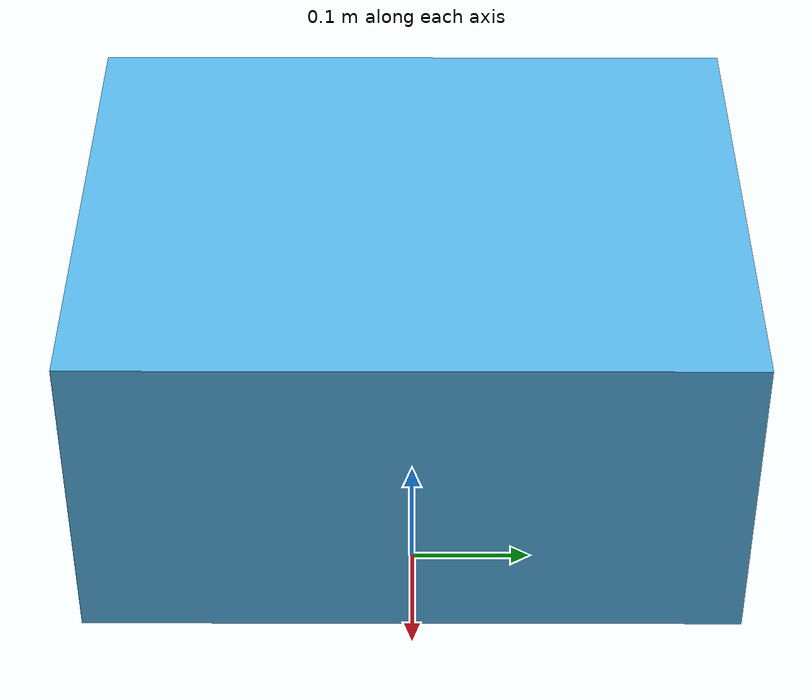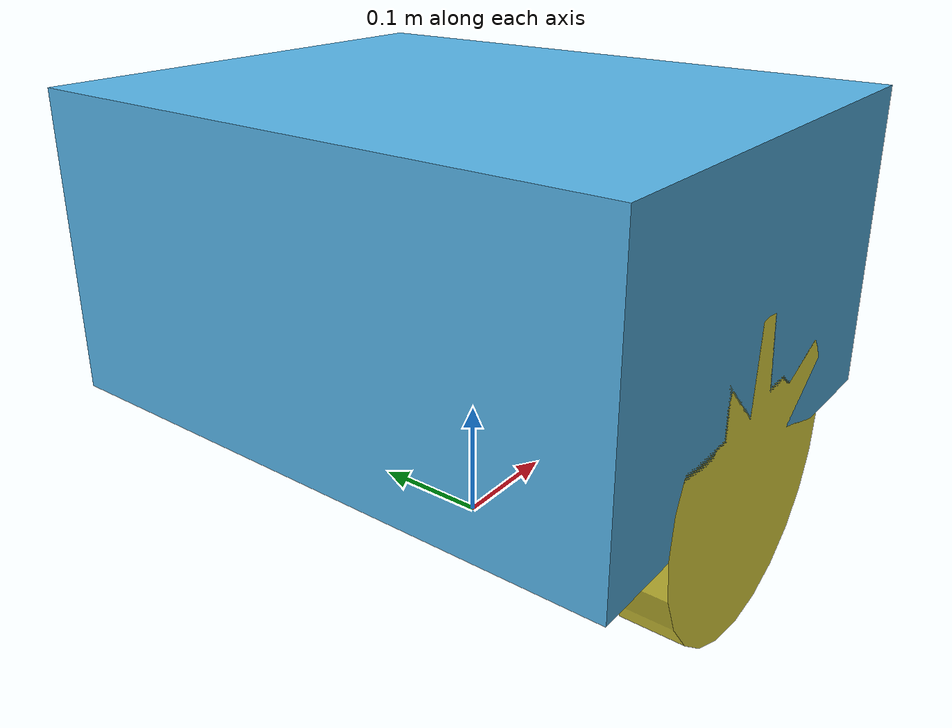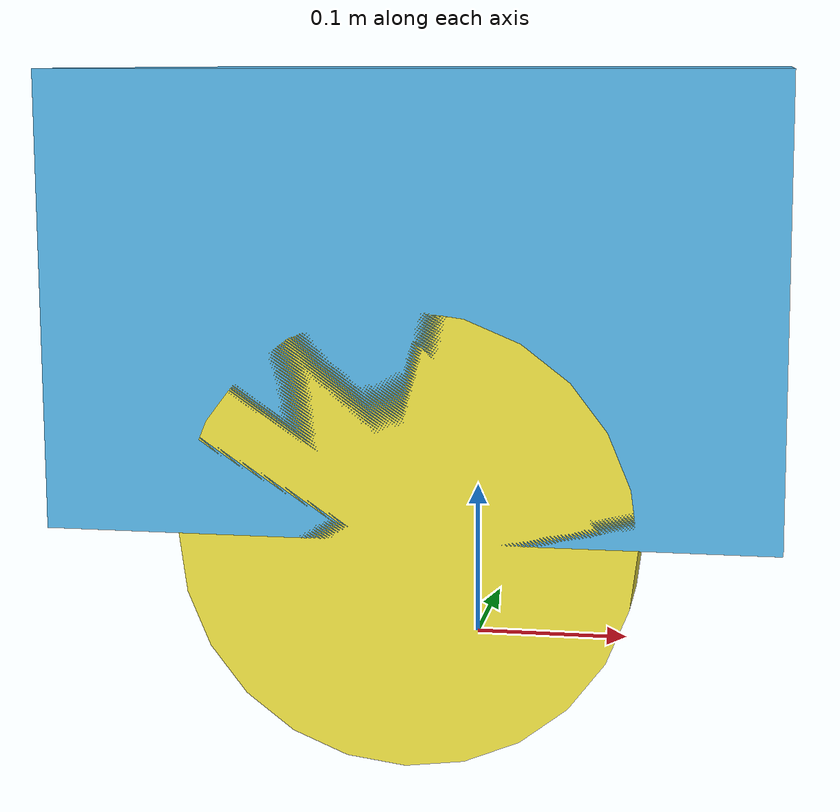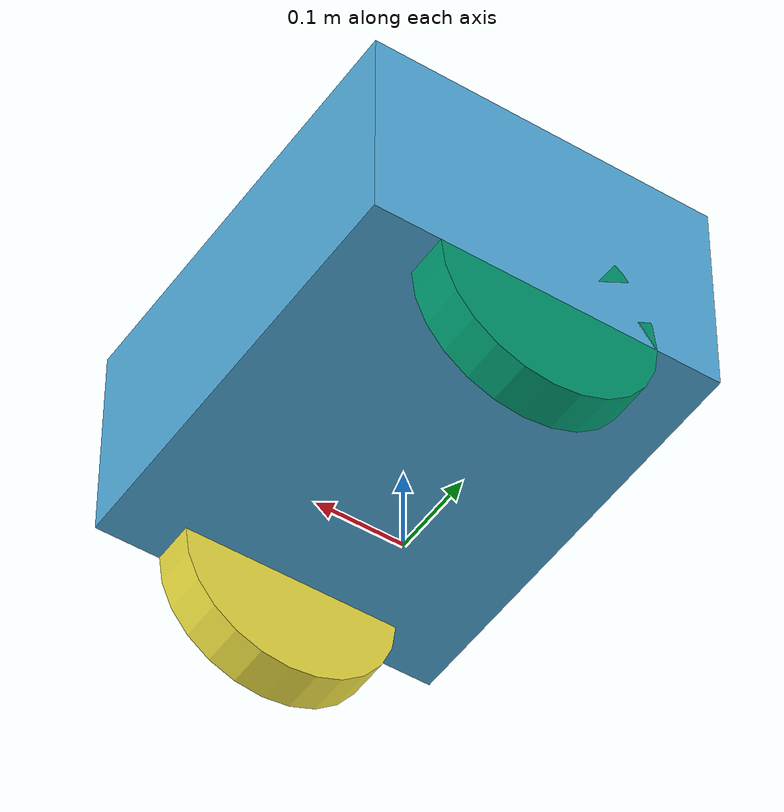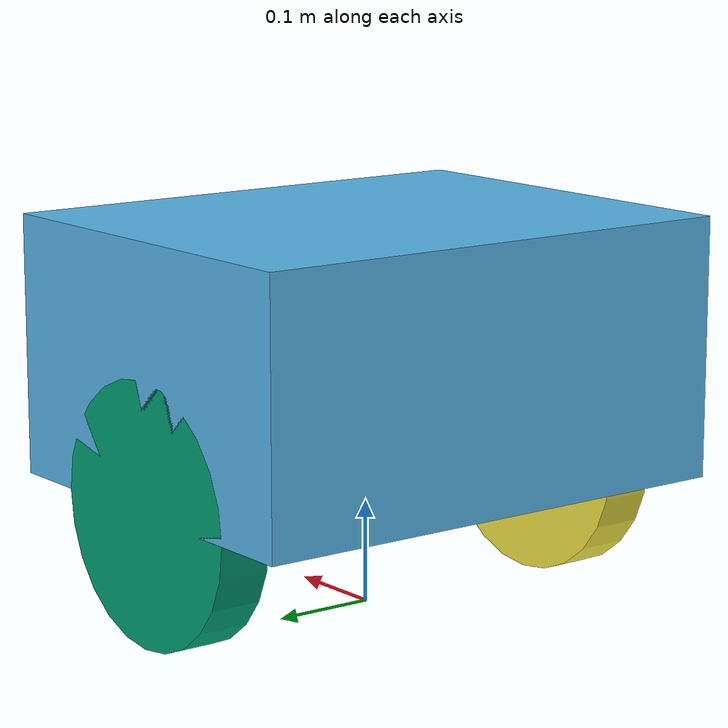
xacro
<?xml version="1.0"?>
<robot xmlns:xacro="http://www.ros.org/wiki/xacro" name="mobot">

    <xacro:include filename="$(find mobile_robot)/urdf/mobot_xacro_defs.xacro"/>
    <xacro:include filename="$(find mobile_robot)/urdf/mobot_base_link.xacro"/>
    <xacro:include filename="$(find mobile_robot)/urdf/mobot_wheels.xacro"/>
    <xacro:include filename="$(find mobile_robot)/urdf/mobot_gazebo_plugin.xacro"/>

</robot>

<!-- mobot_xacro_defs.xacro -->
<robot xmlns:xacro="http://www.ros.org/wiki/xacro" name="mobot_xacro_defs">

    <!-- Main Body Dimensions -->
    <xacro:property name="bodylen" value="0.4"/>
    <xacro:property name="bodywidth" value="0.5"/>
    <xacro:property name="bodyheight" value="0.25"/>
    <xacro:property name="bodyclearance" value="0.25"/>
    <xacro:property name="half_bodylen" value="${bodylen/2.0}"/>
    <xacro:property name="half_bodyheight" value="${bodyheight/2.0}"/>

    <!-- Body location relative to base link frame -->
    <xacro:property name="bodyOX" value="0"/>
    <xacro:property name="bodyOY" value="0"/>
    <xacro:property name="bodyOZ" value="${bodyclearance}"/>

    <!-- Wheel Dimensions -->
    <xacro:property name="wheeldiam" value="${bodyclearance}"/>
    <xacro:property name="wheelrad" value="${wheeldiam/2.0}"/>
    <xacro:property name="wheelwidth" value="0.05"/>
    <xacro:property name="wheeldist" value="0.45"/>

    <xacro:property name="M_PI" value="3.14159265359"/>

    <!-- Default Inertia Matrix -->
    <xacro:macro name="default_inertial" params="mass">
        <inertial>
            <mass value="${mass}"/>
            <inertia ixx="0.01" ixy="0.0" ixz="0.0"
                     iyy="0.01" iyz="0.0"
                     izz="0.01"/>
        </inertial>
    </xacro:macro>
</robot>

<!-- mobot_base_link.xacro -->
<robot xmlns:xacro="http://www.ros.org/wiki/xacro" name="mobot_base_link">
    <link name="base_link">
    </link>
    <link name="main_body">
        <visual>
            <geometry>
                <box size="${bodylen} ${bodywidth} ${bodyheight}"/>
            </geometry>
            <origin xyz="${bodyOX} ${bodyOY} ${bodyOZ}" rpy="0 0 0"/>
        </visual>
        <collision>
            <geometry>
                <box size="${bodylen} ${bodywidth} ${bodyheight}"/>
            </geometry>
            <origin xyz="${bodyOX} ${bodyOY} ${bodyOZ}" rpy="0 0 0"/>
        </collision>
        <inertial>
            <mass value="100"/>
            <inertia ixx="10.0" ixy="0.0" ixz="0.0"
                     iyy="10.0" iyz="0.0"
                     izz="10.0"/>
        </inertial>
    </link>

    <joint name="main_body_joint" type="fixed">
        <parent link="base_link"/>
        <child link="main_body"/>
        <origin xyz="0 0 0" rpy="0 0 0"/>
    </joint>
</robot>

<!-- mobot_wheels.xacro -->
<robot xmlns:xacro="http://www.ros.org/wiki/xacro" name="mobot_wheels">

    <xacro:macro name="wheel" params="prefix reflect">
        <link name="${prefix}_wheel">
            <visual>
                <geometry>
                    <cylinder radius="${wheelrad}" length="${wheelwidth}"/>
                </geometry>
            </visual>
            <collision>
                <geometry>
                    <cylinder radius="${wheelrad}" length="${wheelwidth}"/>
                </geometry>
            </collision>
            <inertial>
                <mass value="1"/>
                <inertia ixx="0.1" ixy="0.0" ixz="0.0"
                         iyy="0.1" iyz="0.0"
                         izz="0.1"/>
            </inertial>
        </link>

        <joint name="${prefix}_wheel_joint" type="continuous">
            <axis xyz="0 0 1"/>
            <parent link="base_link"/>
            <child link="${prefix}_wheel"/>
            <origin xyz="0 ${reflect*wheeldist/2.0} ${wheelrad}" rpy="0 ${M_PI/2} ${M_PI/2}"/>
            <limit effort="100" velocity="15"/>
            <joint_properties damping="0.0" friction="0.0"/>
        </joint>
    </xacro:macro>

    <xacro:wheel prefix="left" reflect="1"/>
    <xacro:wheel prefix="right" reflect="-1"/>

</robot>
